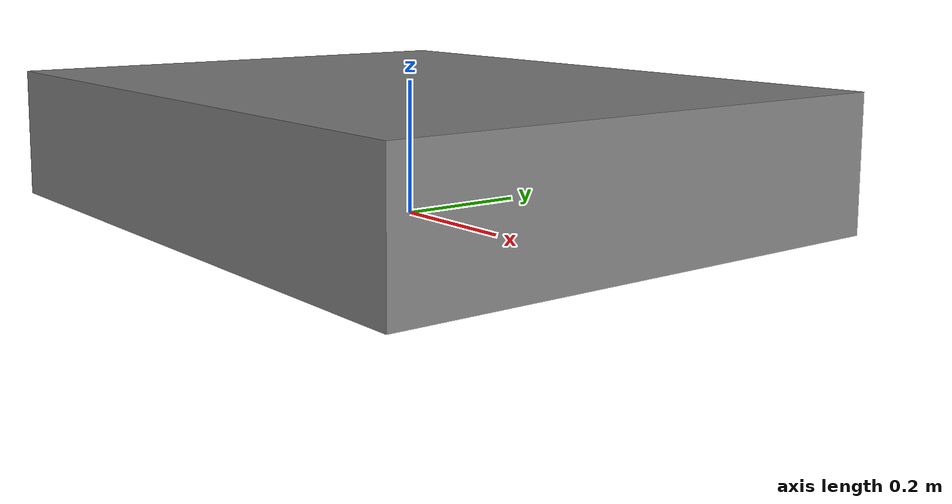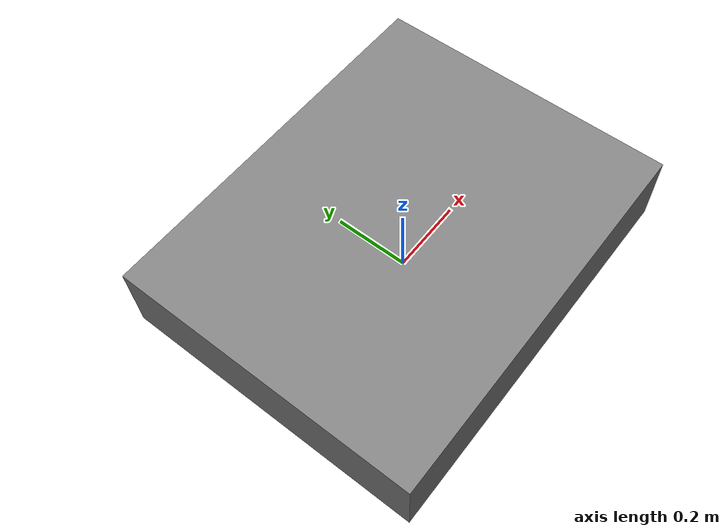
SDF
<?xml version="1.0" ?>
<sdf version="1.8">
  <model name="sar_target_debris">
    <static>false</static>
    <link name="debris_body">
      <pose>0 0 0.1 0 0 0</pose>

      <visual name="visual">
        <geometry>
          <box>
            <size>1.0 0.8 0.2</size>
          </box>
        </geometry>
        <material>
          <ambient>0.4 0.4 0.4 1</ambient>
          <diffuse>0.5 0.5 0.5 1</diffuse>
          <specular>0.1 0.1 0.1 1</specular>
        </material>
      </visual>

      <collision name="collision">
        <geometry>
          <box>
            <size>1.0 0.8 0.2</size>
          </box>
        </geometry>
      </collision>

      <inertial>
        <mass>20</mass>
        <inertia>
          <ixx>1.0</ixx>
          <iyy>1.5</iyy>
          <izz>2.0</izz>
        </inertia>
      </inertial>
    </link>
  </model>
</sdf>
